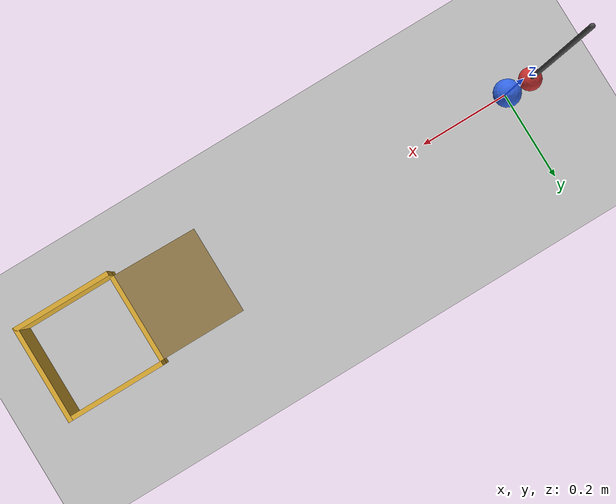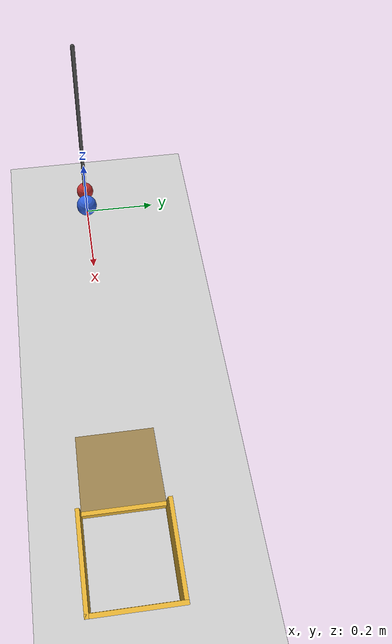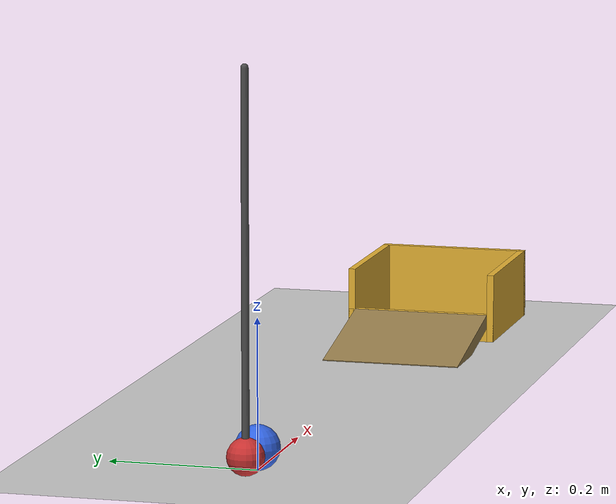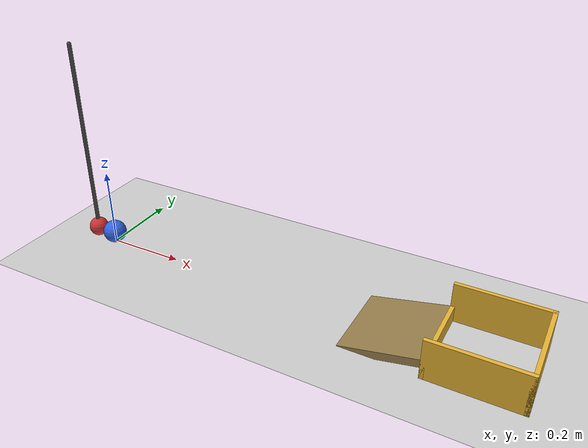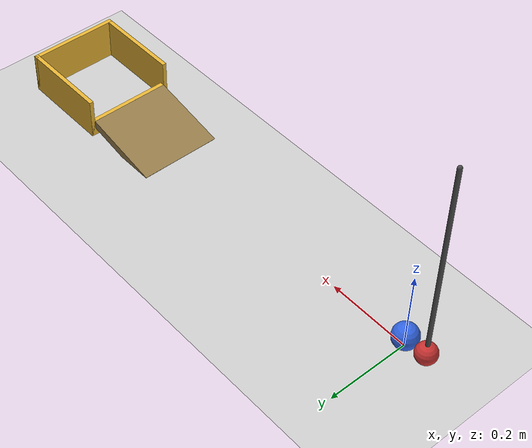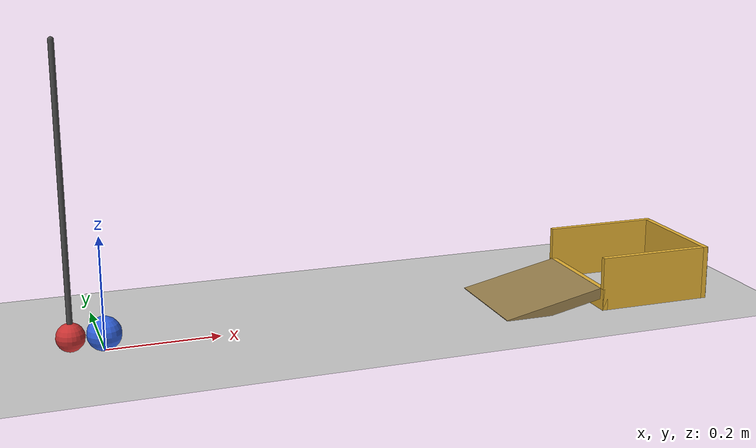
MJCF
<mujoco model="pendulum_ball_cup">
  <option timestep="0.002" gravity="0 0 -9.81"/>
  <visual>
    <global offwidth="1280" offheight="720"/>
  </visual>
  <worldbody>
    <light name="sun" pos="0.5 -1 2" dir="0 0.5 -1" directional="true"/>
    <geom name="floor" type="plane" size="3 3 0.1" rgba="0.8 0.8 0.8 1"/>

    <body name="pendulum" pos="-0.056 0 0.53">
      <joint name="pendulum_hinge" type="hinge" axis="0 1 0"/>
      <geom name="pendulum_rod" type="capsule" fromto="0 0 0 0 0 -0.475" size="0.005" mass="0.02" rgba="0.3 0.3 0.3 1"/>
      <geom name="pendulum_bob" type="sphere" pos="0 0 -0.5" size="0.025" mass="1.0" rgba="0.8 0.2 0.2 1"/>
    </body>

    <body name="ball" pos="0 0 0.03">
      <freejoint name="ball_free"/>
      <geom name="ball" type="sphere" size="0.03" mass="0.05" rgba="0.2 0.4 0.9 1"/>
    </body>

    <body name="ramp" pos="0 0 0">
      <geom name="ramp" type="box" pos="0.798 0 0.0102" euler="0 -12 0" size="0.0962 0.1 0.01" rgba="0.6 0.5 0.3 1"/>
    </body>

    <body name="cup" pos="1 0 0">
      <geom name="cup_front" type="box" pos="-0.105 0 0.02" size="0.005 0.11 0.02" rgba="0.9 0.7 0.2 1"/>
      <geom name="cup_back" type="box" pos="0.105 0 0.05" size="0.005 0.11 0.05" rgba="0.9 0.7 0.2 1"/>
      <geom name="cup_left" type="box" pos="0 0.105 0.05" size="0.11 0.005 0.05" rgba="0.9 0.7 0.2 1"/>
      <geom name="cup_right" type="box" pos="0 -0.105 0.05" size="0.11 0.005 0.05" rgba="0.9 0.7 0.2 1"/>
    </body>
  </worldbody>

  <keyframe>
    <key name="start" qpos="0.698 0 0 0.03 1 0 0 0" qvel="0 0 0 0 0 0 0"/>
  </keyframe>
</mujoco>
